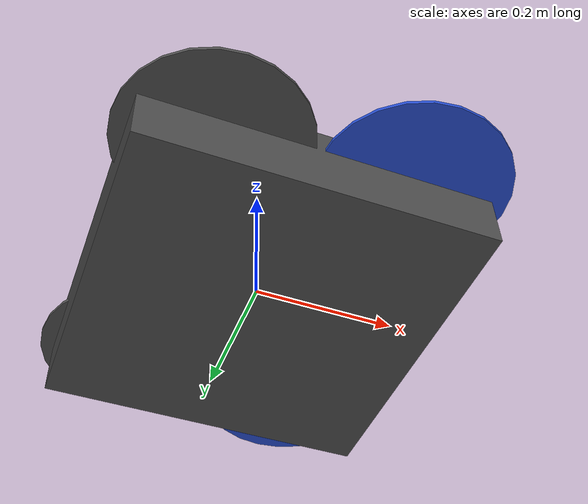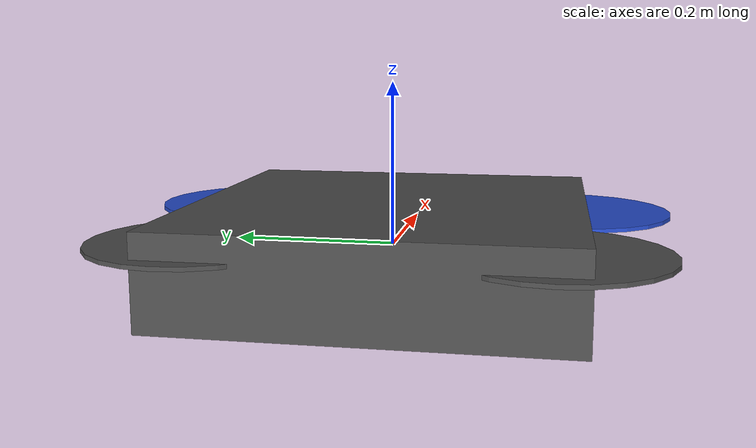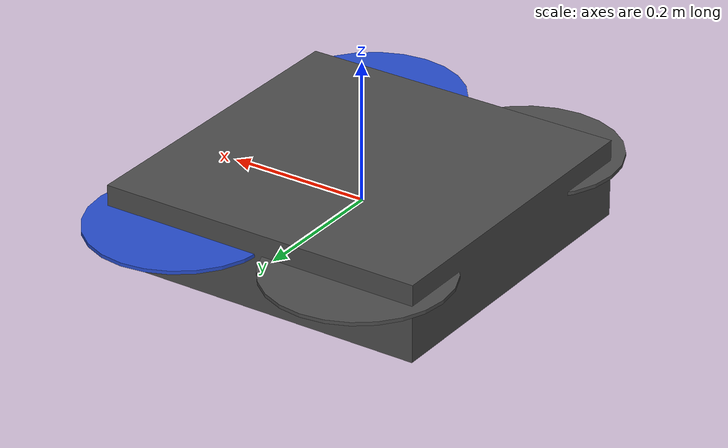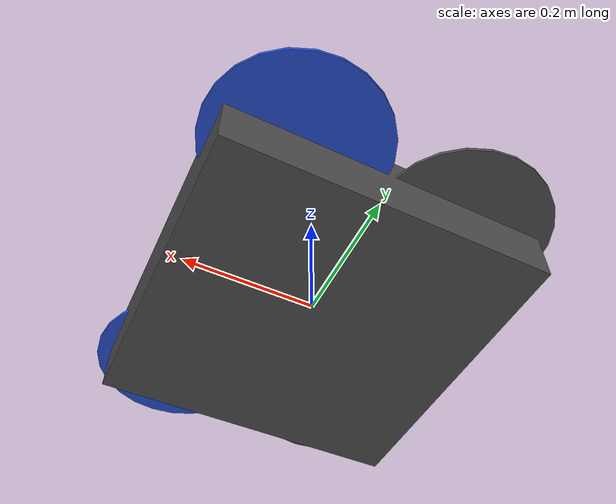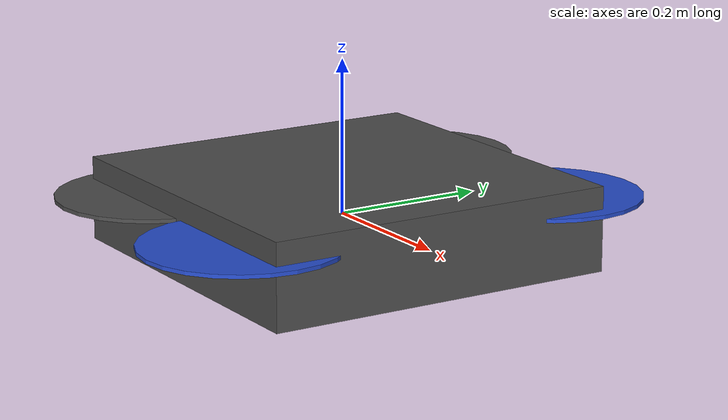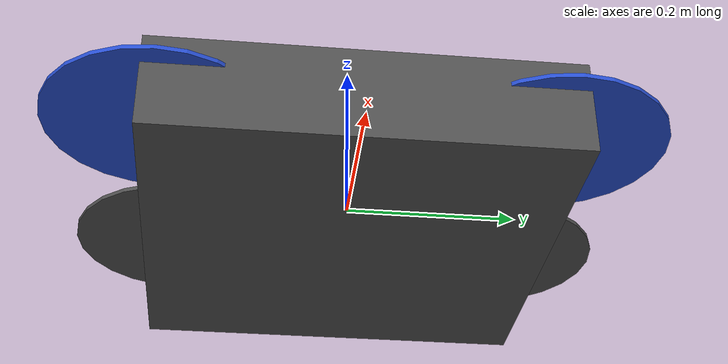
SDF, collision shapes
<sdf version='1.6'>
  <model name='iris'>
    <link name='base_link'>
      <pose frame=''>0 0 0 0 -0 0</pose>
      <inertial>
        <pose frame=''>0 0 0 0 -0 0</pose>
        <mass>1.5</mass>
        <inertia>
          <ixx>0.0347563</ixx>
          <ixy>0</ixy>
          <ixz>0</ixz>
          <iyy>0.0458929</iyy>
          <iyz>0</iyz>
          <izz>0.0977</izz>
        </inertia>
      </inertial>
      <collision name='base_link_inertia_collision'>
        <pose frame=''>0 0 0 0 -0 0</pose>
        <geometry>
          <box>
            <size>0.47 0.47 0.11</size>
          </box>
        </geometry>
        <surface>
          <contact>
            <collide_bitmask>0x01</collide_bitmask>
            <ode>
              <min_depth>0.001</min_depth>
              <max_vel>0</max_vel>
            </ode>
          </contact>
          <friction>
            <ode/>
          </friction>
        </surface>
      </collision>
      <visual name='base_link_inertia_visual'>
        <pose frame=''>0 0 0 0 -0 0</pose>
        <geometry>
          <mesh>
            <scale>1 1 1</scale>
            <uri>model://rotors_description/meshes/iris.stl</uri>
          </mesh>
        </geometry>
        <material>
          <script>
            <name>Gazebo/DarkGrey</name>
            <uri>file://media/materials/scripts/gazebo.material</uri>
          </script>
        </material>
      </visual>
      <gravity>1</gravity>
      <velocity_decay/>
    </link>
    <link name='/imu_link'>
      <pose frame=''>0 0 0 0 -0 0</pose>
      <inertial>
        <pose frame=''>0 0 0 0 -0 0</pose>
        <mass>0.015</mass>
        <inertia>
          <ixx>1e-05</ixx>
          <ixy>0</ixy>
          <ixz>0</ixz>
          <iyy>1e-05</iyy>
          <iyz>0</iyz>
          <izz>1e-05</izz>
        </inertia>
      </inertial>
    </link>
    <joint name='/imu_joint' type='revolute'>
      <child>/imu_link</child>
      <parent>base_link</parent>
      <axis>
        <xyz>1 0 0</xyz>
        <limit>
          <lower>0</lower>
          <upper>0</upper>
          <effort>0</effort>
          <velocity>0</velocity>
        </limit>
        <dynamics>
          <spring_reference>0</spring_reference>
          <spring_stiffness>0</spring_stiffness>
        </dynamics>
        <use_parent_model_frame>1</use_parent_model_frame>
      </axis>
    </joint>
    <link name='rotor_0'>
      <pose frame=''>0.13 -0.22 0.023 0 -0 0</pose>
      <inertial>
        <pose frame=''>0 0 0 0 -0 0</pose>
        <mass>0.005</mass>
        <inertia>
          <ixx>9.75e-07</ixx>
          <ixy>0</ixy>
          <ixz>0</ixz>
          <iyy>0.000273104</iyy>
          <iyz>0</iyz>
          <izz>0.000274004</izz>
        </inertia>
      </inertial>
      <collision name='rotor_0_collision'>
        <pose frame=''>0 0 0 0 -0 0</pose>
        <geometry>
          <cylinder>
            <length>0.005</length>
            <radius>0.128</radius>
          </cylinder>
        </geometry>
        <surface>
          <contact>
            <ode/>
          </contact>
          <friction>
            <ode/>
          </friction>
        </surface>
      </collision>
      <visual name='rotor_0_visual'>
        <pose frame=''>0 0 0 0 -0 0</pose>
        <geometry>
          <mesh>
            <scale>1 1 1</scale>
            <uri>model://rotors_description/meshes/iris_prop_ccw.dae</uri>
          </mesh>
        </geometry>
        <material>
          <script>
            <name>Gazebo/Blue</name>
            <uri>file://media/materials/scripts/gazebo.material</uri>
          </script>
        </material>
      </visual>
      <gravity>1</gravity>
      <velocity_decay/>
    </link>
    <joint name='rotor_0_joint' type='revolute'>
      <child>rotor_0</child>
      <parent>base_link</parent>
      <axis>
        <xyz>0 0 1</xyz>
        <limit>
          <lower>-1e+16</lower>
          <upper>1e+16</upper>
        </limit>
        <dynamics>
          <spring_reference>0</spring_reference>
          <spring_stiffness>0</spring_stiffness>
        </dynamics>
        <use_parent_model_frame>1</use_parent_model_frame>
      </axis>
    </joint>
    <link name='rotor_1'>
      <pose frame=''>-0.13 0.2 0.023 0 -0 0</pose>
      <inertial>
        <pose frame=''>0 0 0 0 -0 0</pose>
        <mass>0.005</mass>
        <inertia>
          <ixx>9.75e-07</ixx>
          <ixy>0</ixy>
          <ixz>0</ixz>
          <iyy>0.000273104</iyy>
          <iyz>0</iyz>
          <izz>0.000274004</izz>
        </inertia>
      </inertial>
      <collision name='rotor_1_collision'>
        <pose frame=''>0 0 0 0 -0 0</pose>
        <geometry>
          <cylinder>
            <length>0.005</length>
            <radius>0.128</radius>
          </cylinder>
        </geometry>
        <surface>
          <contact>
            <ode/>
          </contact>
          <friction>
            <ode/>
          </friction>
        </surface>
      </collision>
      <visual name='rotor_1_visual'>
        <pose frame=''>0 0 0 0 -0 0</pose>
        <geometry>
          <mesh>
            <scale>1 1 1</scale>
            <uri>model://rotors_description/meshes/iris_prop_ccw.dae</uri>
          </mesh>
        </geometry>
        <material>
          <script>
            <name>Gazebo/DarkGrey</name>
            <uri>file://media/materials/scripts/gazebo.material</uri>
          </script>
        </material>
      </visual>
      <gravity>1</gravity>
      <velocity_decay/>
    </link>
    <joint name='rotor_1_joint' type='revolute'>
      <child>rotor_1</child>
      <parent>base_link</parent>
      <axis>
        <xyz>0 0 1</xyz>
        <limit>
          <lower>-1e+16</lower>
          <upper>1e+16</upper>
        </limit>
        <dynamics>
          <spring_reference>0</spring_reference>
          <spring_stiffness>0</spring_stiffness>
        </dynamics>
        <use_parent_model_frame>1</use_parent_model_frame>
      </axis>
    </joint>
    <link name='rotor_2'>
      <pose frame=''>0.13 0.22 0.023 0 -0 0</pose>
      <inertial>
        <pose frame=''>0 0 0 0 -0 0</pose>
        <mass>0.005</mass>
        <inertia>
          <ixx>9.75e-07</ixx>
          <ixy>0</ixy>
          <ixz>0</ixz>
          <iyy>0.000273104</iyy>
          <iyz>0</iyz>
          <izz>0.000274004</izz>
        </inertia>
      </inertial>
      <collision name='rotor_2_collision'>
        <pose frame=''>0 0 0 0 -0 0</pose>
        <geometry>
          <cylinder>
            <length>0.005</length>
            <radius>0.128</radius>
          </cylinder>
        </geometry>
        <surface>
          <contact>
            <ode/>
          </contact>
          <friction>
            <ode/>
          </friction>
        </surface>
      </collision>
      <visual name='rotor_2_visual'>
        <pose frame=''>0 0 0 0 -0 0</pose>
        <geometry>
          <mesh>
            <scale>1 1 1</scale>
            <uri>model://rotors_description/meshes/iris_prop_cw.dae</uri>
          </mesh>
        </geometry>
        <material>
          <script>
            <name>Gazebo/Blue</name>
            <uri>file://media/materials/scripts/gazebo.material</uri>
          </script>
        </material>
      </visual>
      <gravity>1</gravity>
      <velocity_decay/>
    </link>
    <joint name='rotor_2_joint' type='revolute'>
      <child>rotor_2</child>
      <parent>base_link</parent>
      <axis>
        <xyz>0 0 1</xyz>
        <limit>
          <lower>-1e+16</lower>
          <upper>1e+16</upper>
        </limit>
        <dynamics>
          <spring_reference>0</spring_reference>
          <spring_stiffness>0</spring_stiffness>
        </dynamics>
        <use_parent_model_frame>1</use_parent_model_frame>
      </axis>
    </joint>
    <link name='rotor_3'>
      <pose frame=''>-0.13 -0.2 0.023 0 -0 0</pose>
      <inertial>
        <pose frame=''>0 0 0 0 -0 0</pose>
        <mass>0.005</mass>
        <inertia>
          <ixx>9.75e-07</ixx>
          <ixy>0</ixy>
          <ixz>0</ixz>
          <iyy>0.000273104</iyy>
          <iyz>0</iyz>
          <izz>0.000274004</izz>
        </inertia>
      </inertial>
      <collision name='rotor_3_collision'>
        <pose frame=''>0 0 0 0 -0 0</pose>
        <geometry>
          <cylinder>
            <length>0.005</length>
            <radius>0.128</radius>
          </cylinder>
        </geometry>
        <surface>
          <contact>
            <ode/>
          </contact>
          <friction>
            <ode/>
          </friction>
        </surface>
      </collision>
      <visual name='rotor_3_visual'>
        <pose frame=''>0 0 0 0 -0 0</pose>
        <geometry>
          <mesh>
            <scale>1 1 1</scale>
            <uri>model://rotors_description/meshes/iris_prop_cw.dae</uri>
          </mesh>
        </geometry>
        <material>
          <script>
            <name>Gazebo/DarkGrey</name>
            <uri>file://media/materials/scripts/gazebo.material</uri>
          </script>
        </material>
      </visual>
      <gravity>1</gravity>
      <velocity_decay/>
    </link>
    <joint name='rotor_3_joint' type='revolute'>
      <child>rotor_3</child>
      <parent>base_link</parent>
      <axis>
        <xyz>0 0 1</xyz>
        <limit>
          <lower>-1e+16</lower>
          <upper>1e+16</upper>
        </limit>
        <dynamics>
          <spring_reference>0</spring_reference>
          <spring_stiffness>0</spring_stiffness>
        </dynamics>
        <use_parent_model_frame>1</use_parent_model_frame>
      </axis>
    </joint>
    <plugin name='rosbag' filename='libgazebo_multirotor_base_plugin.so'>
      <robotNamespace/>
      <linkName>base_link</linkName>
      <rotorVelocitySlowdownSim>10</rotorVelocitySlowdownSim>
    </plugin>
    <plugin name='front_right_motor_model' filename='libgazebo_motor_model.so'>
      <robotNamespace/>
      <jointName>rotor_0_joint</jointName>
      <linkName>rotor_0</linkName>
      <turningDirection>ccw</turningDirection>
      <timeConstantUp>0.0125</timeConstantUp>
      <timeConstantDown>0.025</timeConstantDown>
      <maxRotVelocity>1100</maxRotVelocity>
      <motorConstant>8.54858e-06</motorConstant>
      <momentConstant>0.06</momentConstant>
      <commandSubTopic>/gazebo/command/motor_speed</commandSubTopic>
      <motorNumber>0</motorNumber>
      <rotorDragCoefficient>0.000806428</rotorDragCoefficient>
      <rollingMomentCoefficient>1e-06</rollingMomentCoefficient>
      <motorSpeedPubTopic>/motor_speed/0</motorSpeedPubTopic>
      <rotorVelocitySlowdownSim>10</rotorVelocitySlowdownSim>
    </plugin>
    <plugin name='back_left_motor_model' filename='libgazebo_motor_model.so'>
      <robotNamespace/>
      <jointName>rotor_1_joint</jointName>
      <linkName>rotor_1</linkName>
      <turningDirection>ccw</turningDirection>
      <timeConstantUp>0.0125</timeConstantUp>
      <timeConstantDown>0.025</timeConstantDown>
      <maxRotVelocity>1100</maxRotVelocity>
      <motorConstant>8.54858e-06</motorConstant>
      <momentConstant>0.06</momentConstant>
      <commandSubTopic>/gazebo/command/motor_speed</commandSubTopic>
      <motorNumber>1</motorNumber>
      <rotorDragCoefficient>0.000806428</rotorDragCoefficient>
      <rollingMomentCoefficient>1e-06</rollingMomentCoefficient>
      <motorSpeedPubTopic>/motor_speed/1</motorSpeedPubTopic>
      <rotorVelocitySlowdownSim>10</rotorVelocitySlowdownSim>
    </plugin>
    <plugin name='front_left_motor_model' filename='libgazebo_motor_model.so'>
      <robotNamespace/>
      <jointName>rotor_2_joint</jointName>
      <linkName>rotor_2</linkName>
      <turningDirection>cw</turningDirection>
      <timeConstantUp>0.0125</timeConstantUp>
      <timeConstantDown>0.025</timeConstantDown>
      <maxRotVelocity>1100</maxRotVelocity>
      <motorConstant>8.54858e-06</motorConstant>
      <momentConstant>0.06</momentConstant>
      <commandSubTopic>/gazebo/command/motor_speed</commandSubTopic>
      <motorNumber>2</motorNumber>
      <rotorDragCoefficient>0.000806428</rotorDragCoefficient>
      <rollingMomentCoefficient>1e-06</rollingMomentCoefficient>
      <motorSpeedPubTopic>/motor_speed/2</motorSpeedPubTopic>
      <rotorVelocitySlowdownSim>10</rotorVelocitySlowdownSim>
    </plugin>
    <plugin name='back_right_motor_model' filename='libgazebo_motor_model.so'>
      <robotNamespace/>
      <jointName>rotor_3_joint</jointName>
      <linkName>rotor_3</linkName>
      <turningDirection>cw</turningDirection>
      <timeConstantUp>0.0125</timeConstantUp>
      <timeConstantDown>0.025</timeConstantDown>
      <maxRotVelocity>1100</maxRotVelocity>
      <motorConstant>8.54858e-06</motorConstant>
      <momentConstant>0.06</momentConstant>
      <commandSubTopic>/gazebo/command/motor_speed</commandSubTopic>
      <motorNumber>3</motorNumber>
      <rotorDragCoefficient>0.000806428</rotorDragCoefficient>
      <rollingMomentCoefficient>1e-06</rollingMomentCoefficient>
      <motorSpeedPubTopic>/motor_speed/3</motorSpeedPubTopic>
      <rotorVelocitySlowdownSim>10</rotorVelocitySlowdownSim>
    </plugin>
    <plugin name='gps_plugin' filename='libgazebo_gps_plugin.so'>
      <robotNamespace/>
      <gpsNoise>1</gpsNoise>
    </plugin>
    <plugin name='magnetometer_plugin' filename='libgazebo_magnetometer_plugin.so'>
      <robotNamespace/>
      <pubRate>20</pubRate>
      <noiseDensity>0.0004</noiseDensity>
      <randomWalk>6.4e-06</randomWalk>
      <biasCorrelationTime>600</biasCorrelationTime>
      <magTopic>/mag</magTopic>
    </plugin>
    <plugin name='barometer_plugin' filename='libgazebo_barometer_plugin.so'>
      <robotNamespace/>
      <pubRate>10</pubRate>
      <baroTopic>/baro</baroTopic>
    </plugin>
    <plugin name='mavlink_interface' filename='libgazebo_mavlink_interface.so'>
      <robotNamespace/>
      <imuSubTopic>/imu</imuSubTopic>
      <gpsSubTopic>/gps</gpsSubTopic>
      <magSubTopic>/mag</magSubTopic>
      <baroSubTopic>/baro</baroSubTopic>
      <mavlink_addr>INADDR_ANY</mavlink_addr>
      <mavlink_udp_port>14560</mavlink_udp_port>
      <mavlink_tcp_port>4560</mavlink_tcp_port>
      <serialEnabled>0</serialEnabled>
      <serialDevice>/dev/ttyACM0</serialDevice>
      <baudRate>921600</baudRate>
      <qgc_addr>INADDR_ANY</qgc_addr>
      <qgc_udp_port>14550</qgc_udp_port>
      <sdk_addr>INADDR_ANY</sdk_addr>
      <sdk_udp_port>14540</sdk_udp_port>
      <hil_mode>0</hil_mode>
      <hil_state_level>0</hil_state_level>
      <vehicle_is_tailsitter>0</vehicle_is_tailsitter>
      <send_vision_estimation>1</send_vision_estimation>
      <send_odometry>0</send_odometry>
      <enable_lockstep>1</enable_lockstep>
      <use_tcp>1</use_tcp>
      <motorSpeedCommandPubTopic>/gazebo/command/motor_speed</motorSpeedCommandPubTopic>
      <control_channels>
        <channel name='rotor1'>
          <input_index>0</input_index>
          <input_offset>0</input_offset>
          <input_scaling>1000</input_scaling>
          <zero_position_disarmed>0</zero_position_disarmed>
          <zero_position_armed>100</zero_position_armed>
          <joint_control_type>velocity</joint_control_type>
        </channel>
        <channel name='rotor2'>
          <input_index>1</input_index>
          <input_offset>0</input_offset>
          <input_scaling>1000</input_scaling>
          <zero_position_disarmed>0</zero_position_disarmed>
          <zero_position_armed>100</zero_position_armed>
          <joint_control_type>velocity</joint_control_type>
        </channel>
        <channel name='rotor3'>
          <input_index>2</input_index>
          <input_offset>0</input_offset>
          <input_scaling>1000</input_scaling>
          <zero_position_disarmed>0</zero_position_disarmed>
          <zero_position_armed>100</zero_position_armed>
          <joint_control_type>velocity</joint_control_type>
        </channel>
        <channel name='rotor4'>
          <input_index>3</input_index>
          <input_offset>0</input_offset>
          <input_scaling>1000</input_scaling>
          <zero_position_disarmed>0</zero_position_disarmed>
          <zero_position_armed>100</zero_position_armed>
          <joint_control_type>velocity</joint_control_type>
        </channel>
        <channel name='rotor5'>
          <input_index>4</input_index>
          <input_offset>1</input_offset>
          <input_scaling>324.6</input_scaling>
          <zero_position_disarmed>0</zero_position_disarmed>
          <zero_position_armed>0</zero_position_armed>
          <joint_control_type>velocity</joint_control_type>
          <joint_control_pid>
            <p>0.1</p>
            <i>0</i>
            <d>0</d>
            <iMax>0.0</iMax>
            <iMin>0.0</iMin>
            <cmdMax>2</cmdMax>
            <cmdMin>-2</cmdMin>
          </joint_control_pid>
          <joint_name>zephyr_delta_wing::propeller_joint</joint_name>
        </channel>
        <channel name='rotor6'>
          <input_index>5</input_index>
          <input_offset>0</input_offset>
          <input_scaling>0.524</input_scaling>
          <zero_position_disarmed>0</zero_position_disarmed>
          <zero_position_armed>0</zero_position_armed>
          <joint_control_type>position</joint_control_type>
          <joint_name>zephyr_delta_wing::flap_left_joint</joint_name>
          <joint_control_pid>
            <p>10.0</p>
            <i>0</i>
            <d>0</d>
            <iMax>0</iMax>
            <iMin>0</iMin>
            <cmdMax>20</cmdMax>
            <cmdMin>-20</cmdMin>
          </joint_control_pid>
        </channel>
        <channel name='rotor7'>
          <input_index>6</input_index>
          <input_offset>0</input_offset>
          <input_scaling>0.524</input_scaling>
          <zero_position_disarmed>0</zero_position_disarmed>
          <zero_position_armed>0</zero_position_armed>
          <joint_control_type>position</joint_control_type>
          <joint_name>zephyr_delta_wing::flap_right_joint</joint_name>
          <joint_control_pid>
            <p>10.0</p>
            <i>0</i>
            <d>0</d>
            <iMax>0</iMax>
            <iMin>0</iMin>
            <cmdMax>20</cmdMax>
            <cmdMin>-20</cmdMin>
          </joint_control_pid>
        </channel>
        <channel name='rotor8'>
          <input_index>7</input_index>
          <input_offset>0</input_offset>
          <input_scaling>0.524</input_scaling>
          <zero_position_disarmed>0</zero_position_disarmed>
          <zero_position_armed>0</zero_position_armed>
          <joint_control_type>position</joint_control_type>
        </channel>
      </control_channels>
    </plugin>
    <static>0</static>
    <plugin name='rotors_gazebo_imu_plugin' filename='libgazebo_imu_plugin.so'>
      <robotNamespace/>
      <linkName>/imu_link</linkName>
      <imuTopic>/imu</imuTopic>
      <gyroscopeNoiseDensity>0.0003394</gyroscopeNoiseDensity>
      <gyroscopeRandomWalk>3.8785e-05</gyroscopeRandomWalk>
      <gyroscopeBiasCorrelationTime>1000.0</gyroscopeBiasCorrelationTime>
      <gyroscopeTurnOnBiasSigma>0.0087</gyroscopeTurnOnBiasSigma>
      <accelerometerNoiseDensity>0.004</accelerometerNoiseDensity>
      <accelerometerRandomWalk>0.006</accelerometerRandomWalk>
      <accelerometerBiasCorrelationTime>300.0</accelerometerBiasCorrelationTime>
      <accelerometerTurnOnBiasSigma>0.196</accelerometerTurnOnBiasSigma>
    </plugin>

  <!--sf10a lidar downwards - publishes to /mavros/altitude, bottom_clearance-->
    <include>
      <uri>model://sf10a</uri>
      <pose>0 0 -0.05 0 0 0</pose>
    </include>
    <joint name="sf10a_joint" type="fixed">
      <parent>iris::base_link</parent>
      <child>sf10a::link</child>
    </joint>

  <!--depth camera - publishes to /camera/depth/ and camera_ir/depth/, using the kinect plugin-->
  <include>
    <uri>model://depth_camera</uri>
    <pose>0.15 0 0.00 0 0 0</pose>
  </include>
  <joint name="depth_camera_joint" type="fixed">
    <child>depth_camera::link</child>
    <parent>iris::base_link</parent>
    <axis>
      <xyz>0 0 1</xyz>
      <limit>
        <upper>0</upper>
        <lower>0</lower>
      </limit>
    </axis>
  </joint>

   <!--downward facing fpv_cam - publishes to /iris/usb_cam/, using libgazebo camera plugin-->
  <include>
    <uri>model://fpv_cam</uri>
    <pose>0 0 0 0 1.57 0</pose>
  </include>
  <joint name="fpv_cam_joint" type="fixed">
    <child>fpv_cam::link</child>
    <parent>iris::base_link</parent>
    <axis>
      <xyz>0 0 1</xyz>
      <limit>
        <upper>0</upper>
        <lower>0</lower>
      </limit>
    </axis>
  </joint>

    <!--teraranger - 3 LiDAR sensors-->
  <include>
    <uri>model://teraranger</uri>
    <pose>0.11 0 0.05 0 0 0</pose>
  </include>
    <joint name='teraranger_joint' type='fixed'>
      <parent>iris::base_link</parent>
      <child>teraranger::link</child>
      <axis>
      <xyz>0 0 1</xyz>
      <limit>
        <upper>0</upper>
        <lower>0</lower>
      </limit>
    </axis>
    </joint>

  </model>
</sdf>

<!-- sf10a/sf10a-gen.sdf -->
<sdf version="1.5">

  <model name="sf10a">

    <link name="link">

      <inertial>
        <mass>0.05</mass>
        <inertia>
          <ixx>2.08333333333e-07</ixx>
          <iyy>5.20833333333e-07</iyy>
          <izz>5.20833333333e-07</izz>
        </inertia>
      </inertial>

      <visual name="visual">
        <geometry>
          <box>
            <size>0.01 0.005 0.005</size>
          </box>
        </geometry>
        <material>
          <script>
            <name>Gazebo/Blue</name>
            <uri>file://media/materials/scripts/gazebo.material</uri>
          </script>
        </material>
      </visual>

      <collision name="collision">
        <geometry>
          <box>
            <size>0.01 0.005 0.005</size>
          </box>
        </geometry>
      </collision>

      <sensor name="sf10a" type="ray">
        <visualize>true</visualize>
        <always_on>1</always_on>
        <update_rate>20</update_rate>
        <pose>0 0 0 0 1.5707963259 0</pose>
        <ray>
          <scan>
            <horizontal>
              <samples>1</samples>
              <resolution>1</resolution>
              <min_angle>-0</min_angle>
              <max_angle>0</max_angle>
            </horizontal>
          </scan>
          <range>
            <min>0.06</min> <!-- do not change: use min_distance (below) for realistic behavior (smaller values cause issues) -->
            <max>35</max>   <!-- do not change: use min_distance (below) for realistic behavior (bigger values cause issues) -->
            <resolution>0.01</resolution>
          </range>
          <noise>
            <type>gaussian</type>
            <mean>0.0</mean>
            <stddev>0.01</stddev>
          </noise>
        </ray>

        <plugin name="LaserPlugin"
          filename="libgazebo_lidar_plugin.so">
          <robotNamespace></robotNamespace>
          <min_distance>0.2</min_distance>
          <max_distance>11.0</max_distance>
        </plugin>

      </sensor>
    </link>
  </model>

</sdf>

<!-- vim: set et ft=xml fenc=utf-8 ff=unix sts=0 sw=2 ts=2 : -->

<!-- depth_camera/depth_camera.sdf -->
<sdf version='1.6'>
    <model name='depth_camera'>
    <pose>-0.158979 -0.04405 0.045074 0 -0 0</pose>
      <link name='link'>
        <inertial>
          <mass>0.083</mass>
          <inertia>
          <ixx>4.15e-6</ixx>
          <ixy>0</ixy>
          <ixz>0</ixz>
          <iyy>2.407e-6</iyy>
          <iyz>0</iyz>
          <izz>2.407e-6</izz>
          </inertia>
        </inertial>
        <collision name='collision'>
          <geometry>
            <box>
              <size>0.01 0.01 0.01</size>
            </box>
          </geometry>
          <max_contacts>10</max_contacts>
          <surface>
            <contact>
              <ode/>
            </contact>
            <bounce/>
            <friction>
              <ode/>
            </friction>
          </surface>
        </collision>
        <visual name='visual'>
          <geometry>
            <box>
              <size>0.01 0.01 0.01</size>
            </box>
          </geometry>
        </visual>
      <sensor name="camera" type="depth">
        <visualize>1</visualize>
        <update_rate>20</update_rate>
        <camera>
          <horizontal_fov>1.29154</horizontal_fov>
          <image>
            <width>80</width>
            <height>60</height>
            <format>R8G8B8</format>
          </image>
          <clip>
            <near>0.2</near>
            <far>4</far>
          </clip>
        </camera>
             <plugin name="camera_plugin" filename="libgazebo_ros_openni_kinect.so">
          <baseline>0.2</baseline>
          <alwaysOn>true</alwaysOn>
          <updateRate>0.0</updateRate>
          <cameraName>camera_ir</cameraName>
          <imageTopicName>/camera/depth/image_raw</imageTopicName>
          <cameraInfoTopicName>/camera/depth/camera_info</cameraInfoTopicName>
          <depthImageTopicName>/camera/depth/image_raw</depthImageTopicName>
          <depthImageInfoTopicName>/camera/depth/camera_info</depthImageInfoTopicName>
          <pointCloudTopicName>/camera/depth/points</pointCloudTopicName>
          <frameName>camera_link</frameName>
          <pointCloudCutoff>0.05</pointCloudCutoff>
          <distortionK1>0</distortionK1>
          <distortionK2>0</distortionK2>
          <distortionK3>0</distortionK3>
          <distortionT1>0</distortionT1>
          <distortionT2>0</distortionT2>
          <CxPrime>0</CxPrime>
          <Cx>0</Cx>
          <Cy>0</Cy>
          <focalLength>0</focalLength>
          <hackBaseline>0</hackBaseline>
        </plugin>
      </sensor>
      <self_collide>0</self_collide>
        <kinematic>0</kinematic>
    </link>
  </model>
</sdf>

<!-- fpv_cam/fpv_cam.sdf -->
<sdf version='1.6'>
  <model name='fpv_cam'>
    <pose>-0.158979 -0.04405 0.045074 0 -0 0</pose>
    <link name='link'>
      <inertial>
        <mass>0.015</mass>
        <inertia>
          <ixx>4.15e-6</ixx>
          <ixy>0</ixy>
          <ixz>0</ixz>
          <iyy>2.407e-6</iyy>
          <iyz>0</iyz>
          <izz>2.407e-6</izz>
        </inertia>
      </inertial>
      <collision name='collision'>
        <geometry>
          <box>
            <size>0.01 0.01 0.01</size>
          </box>
        </geometry>
        <max_contacts>10</max_contacts>
        <surface>
          <contact>
            <ode />
          </contact>
          <bounce />
          <friction>
            <ode />
          </friction>
        </surface>
      </collision>
      <visual name='visual'>
        <geometry>
          <box>
            <size>0.01 0.01 0.01</size>
          </box>
        </geometry>
      </visual>
      <sensor name='camera' type='camera'>
        <camera name='__default__'>
          <image>
            <width>640</width>
            <height>480</height>
          </image>
          <clip>
            <near>0.1</near>
            <far>100</far>
          </clip>
        </camera>
        <always_on>1</always_on>
        <update_rate>30</update_rate>
        <visualize>1</visualize>
        <plugin name='camera_plugin' filename='libgazebo_ros_camera.so'>
          <robotNamespace></robotNamespace>
          <alwaysOn>true</alwaysOn>
          <imageTopicName>image_raw</imageTopicName>
          <cameraInfoTopicName>camera_info</cameraInfoTopicName>
          <updateRate>30.0</updateRate>
          <cameraName>usb_cam</cameraName>
          <frameName>/robot_camera_link</frameName>
          <CxPrime>275.679</CxPrime>
          <Cx>275.679</Cx>
          <Cy>249.775</Cy>
          <focalLength>554.382713</focalLength>
          <hackBaseline>0</hackBaseline>
          <distortionK1>-0.442373</distortionK1>
          <distortionK2>0.347708</distortionK2>
          <distortionK3>-0.263354</distortionK3>
          <distortionT1>0.000532287</distortionT1>
          <distortionT2>0.0078344</distortionT2>
        </plugin>
      </sensor>
      <self_collide>0</self_collide>
      <kinematic>0</kinematic>
    </link>
  </model>
</sdf>

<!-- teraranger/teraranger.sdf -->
<sdf version="1.5">
  <model name="teraranger">
    <link name="link">
      <inertial>
        <mass>0.024</mass>
        <inertia>
          <ixx>2.08333333333e-07</ixx>
          <iyy>5.20833333333e-07</iyy>
          <izz>5.20833333333e-07</izz>
        </inertia>
      </inertial>
      <visual name="visual">
        <geometry>
          <box>
            <size>0.01 0.005 0.005</size>
          </box>
        </geometry>
        <material>
          <script>
            <name>Gazebo/Blue</name>
            <uri>file://media/materials/scripts/gazebo.material</uri>
          </script>
        </material>
      </visual>
      <collision name="collision">
        <geometry>
          <box>
            <size>0.01 0.005 0.005</size>
          </box>
        </geometry>
      </collision>
      <sensor type="gpu_ray" name="head_hokuyo_sensor">
        <pose>0 0 0 0 0.04 0</pose>
        <visualize>true</visualize>
        <update_rate>40</update_rate>
        <ray>
          <scan>
            <horizontal>
              <samples>3</samples>
              <resolution>1</resolution>
              <min_angle>-0.0785398</min_angle>
              <max_angle>0.0785398</max_angle>
            </horizontal>
          </scan>
          <range>
            <min>0.10</min>
            <max>11.0</max>
            <resolution>0.01</resolution>
          </range>
          <noise>
            <type>gaussian</type>
            <mean>0.0</mean>
            <stddev>0.01</stddev>
          </noise>
        </ray>
        <plugin name="gazebo_ros_head_hokuyo_controller" filename="libgazebo_ros_gpu_laser.so">
          <topicName>/laser/scan</topicName>
          <frameName>hokuyo_link</frameName>
        </plugin>
      </sensor>
    </link>
  </model>
</sdf>
<!-- vim: set et ft=xml fenc=utf-8 ff=unix sts=0 sw=2 ts=2 : -->
